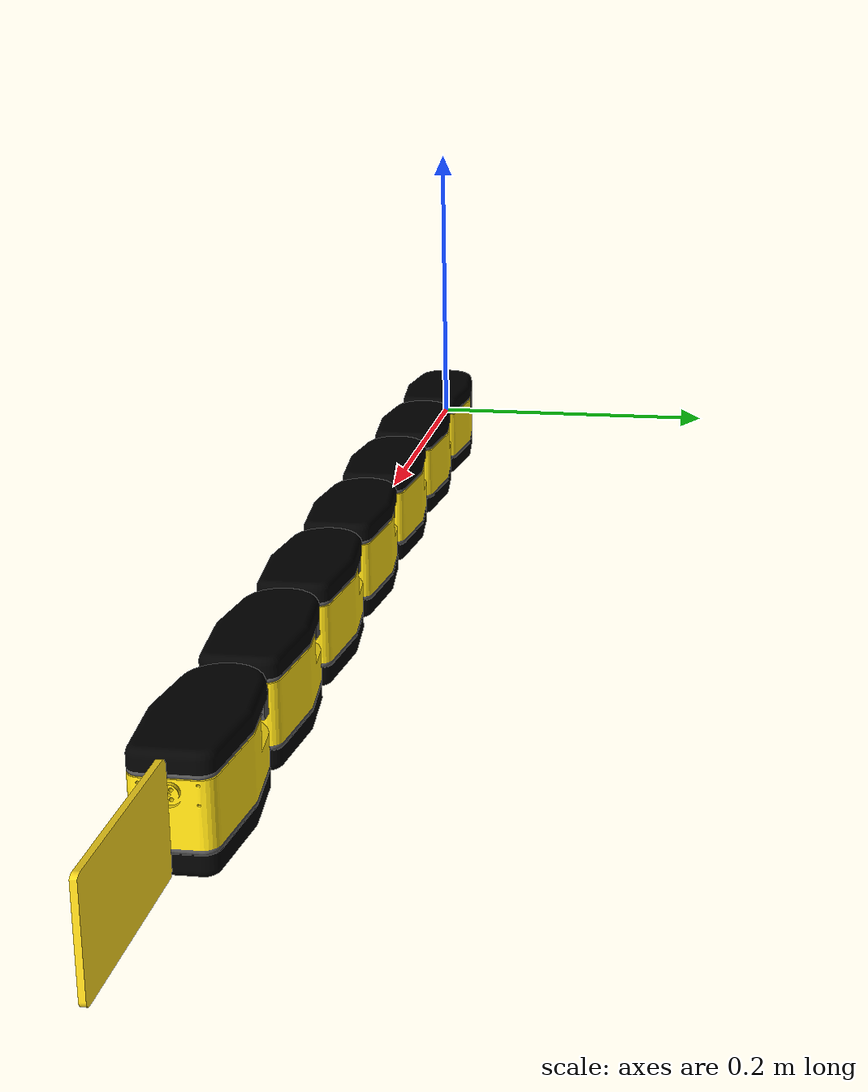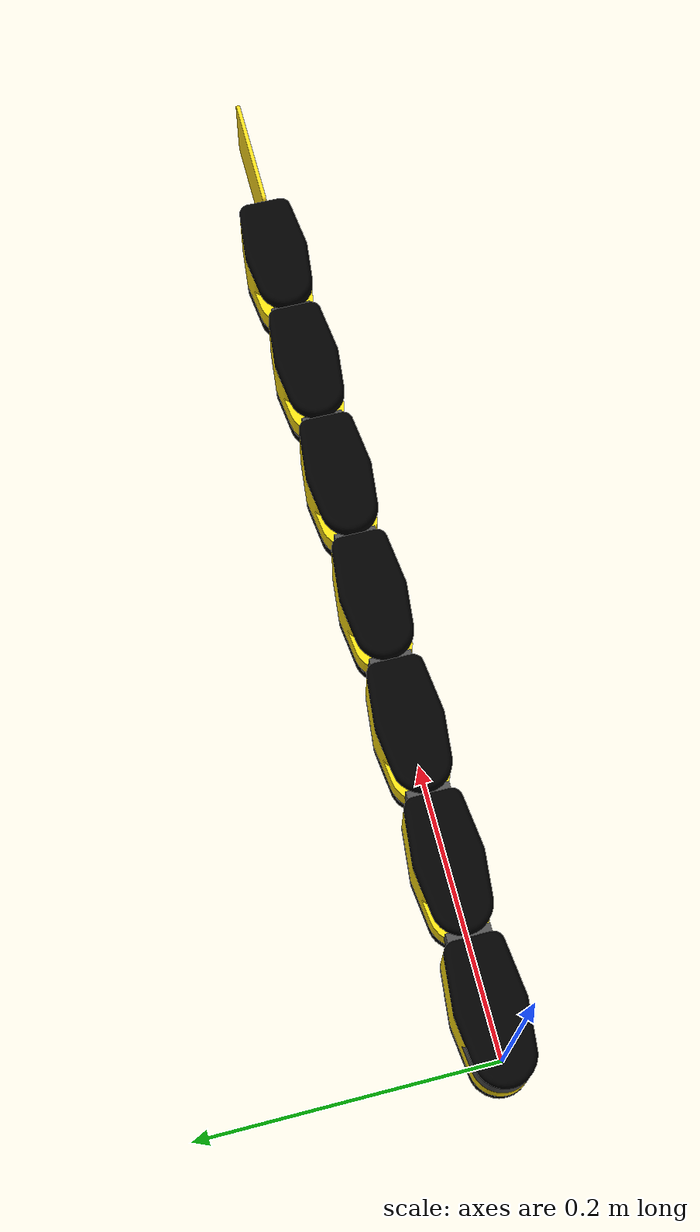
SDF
<?xml version="1.0" ?>
<sdf version="1.6">
  <model name="amphibot">
    <static>false</static>
    <pose>0.0 0.0 0.0 0.0 0.0 0.0</pose>
    <link name="body_module_0">
      <pose>0.0 0.0 0.0 0.0 0.0 0.0</pose>
      <inertial>
        <pose>0.03008411388535613 3.215854099859687e-05 -4.869448966906756e-05 0.0 0.0 0.0</pose>
        <mass>0.214</mass>
        <inertia>
          <ixx>9.12681710047744e-05</ixx>
          <ixy>1.848417294317872e-09</ixy>
          <ixz>1.1074904592586922e-08</ixz>
          <iyy>0.00019972990177748257</iyy>
          <iyz>-3.938113086864309e-09</iyz>
          <izz>0.00017273416551466823</izz>
        </inertia>
      </inertial>
      <collision name="body_module_0_collision">
        <pose>0.0975 0.0 0.0 0.0 0.0 0.0</pose>
        <geometry>
          <mesh>
            <uri>model://amphibot/meshes/amphibot_module.dae</uri>
            <scale>1.0 1.0 1.0</scale>
          </mesh>
        </geometry>
      </collision>
      <visual name="body_module_0_visual">
        <pose>0.0975 0.0 0.0 0.0 0.0 0.0</pose>
        <geometry>
          <mesh>
            <uri>model://amphibot/meshes/amphibot_module.dae</uri>
            <scale>1.0 1.0 1.0</scale>
          </mesh>
        </geometry>
        <material/>
      </visual>
    </link>
    <link name="body_module_1">
      <pose>0.0975 0.0 0.0 0.0 0.0 0.0</pose>
      <inertial>
        <pose>0.03008411388535613 3.215854099859687e-05 -4.869448966906756e-05 0.0 0.0 0.0</pose>
        <mass>0.214</mass>
        <inertia>
          <ixx>9.12681710047744e-05</ixx>
          <ixy>1.848417294317872e-09</ixy>
          <ixz>1.1074904592586922e-08</ixz>
          <iyy>0.00019972990177748257</iyy>
          <iyz>-3.938113086864309e-09</iyz>
          <izz>0.00017273416551466823</izz>
        </inertia>
      </inertial>
      <collision name="body_module_1_collision">
        <pose>0.0975 0.0 0.0 0.0 0.0 0.0</pose>
        <geometry>
          <mesh>
            <uri>model://amphibot/meshes/amphibot_module.dae</uri>
            <scale>1.0 1.0 1.0</scale>
          </mesh>
        </geometry>
      </collision>
      <visual name="body_module_1_visual">
        <pose>0.0975 0.0 0.0 0.0 0.0 0.0</pose>
        <geometry>
          <mesh>
            <uri>model://amphibot/meshes/amphibot_module.dae</uri>
            <scale>1.0 1.0 1.0</scale>
          </mesh>
        </geometry>
        <material/>
      </visual>
    </link>
    <link name="body_module_2">
      <pose>0.195 0.0 0.0 0.0 0.0 0.0</pose>
      <inertial>
        <pose>0.03008411388535613 3.215854099859687e-05 -4.869448966906756e-05 0.0 0.0 0.0</pose>
        <mass>0.214</mass>
        <inertia>
          <ixx>9.12681710047744e-05</ixx>
          <ixy>1.848417294317872e-09</ixy>
          <ixz>1.1074904592586922e-08</ixz>
          <iyy>0.00019972990177748257</iyy>
          <iyz>-3.938113086864309e-09</iyz>
          <izz>0.00017273416551466823</izz>
        </inertia>
      </inertial>
      <collision name="body_module_2_collision">
        <pose>0.0975 0.0 0.0 0.0 0.0 0.0</pose>
        <geometry>
          <mesh>
            <uri>model://amphibot/meshes/amphibot_module.dae</uri>
            <scale>1.0 1.0 1.0</scale>
          </mesh>
        </geometry>
      </collision>
      <visual name="body_module_2_visual">
        <pose>0.0975 0.0 0.0 0.0 0.0 0.0</pose>
        <geometry>
          <mesh>
            <uri>model://amphibot/meshes/amphibot_module.dae</uri>
            <scale>1.0 1.0 1.0</scale>
          </mesh>
        </geometry>
        <material/>
      </visual>
    </link>
    <link name="body_module_3">
      <pose>0.2925 0.0 0.0 0.0 0.0 0.0</pose>
      <inertial>
        <pose>0.03008411388535613 3.215854099859687e-05 -4.869448966906756e-05 0.0 0.0 0.0</pose>
        <mass>0.214</mass>
        <inertia>
          <ixx>9.12681710047744e-05</ixx>
          <ixy>1.848417294317872e-09</ixy>
          <ixz>1.1074904592586922e-08</ixz>
          <iyy>0.00019972990177748257</iyy>
          <iyz>-3.938113086864309e-09</iyz>
          <izz>0.00017273416551466823</izz>
        </inertia>
      </inertial>
      <collision name="body_module_3_collision">
        <pose>0.0975 0.0 0.0 0.0 0.0 0.0</pose>
        <geometry>
          <mesh>
            <uri>model://amphibot/meshes/amphibot_module.dae</uri>
            <scale>1.0 1.0 1.0</scale>
          </mesh>
        </geometry>
      </collision>
      <visual name="body_module_3_visual">
        <pose>0.0975 0.0 0.0 0.0 0.0 0.0</pose>
        <geometry>
          <mesh>
            <uri>model://amphibot/meshes/amphibot_module.dae</uri>
            <scale>1.0 1.0 1.0</scale>
          </mesh>
        </geometry>
        <material/>
      </visual>
    </link>
    <link name="body_module_4">
      <pose>0.39 0.0 0.0 0.0 0.0 0.0</pose>
      <inertial>
        <pose>0.03008411388535613 3.215854099859687e-05 -4.869448966906756e-05 0.0 0.0 0.0</pose>
        <mass>0.214</mass>
        <inertia>
          <ixx>9.12681710047744e-05</ixx>
          <ixy>1.848417294317872e-09</ixy>
          <ixz>1.1074904592586922e-08</ixz>
          <iyy>0.00019972990177748257</iyy>
          <iyz>-3.938113086864309e-09</iyz>
          <izz>0.00017273416551466823</izz>
        </inertia>
      </inertial>
      <collision name="body_module_4_collision">
        <pose>0.0975 0.0 0.0 0.0 0.0 0.0</pose>
        <geometry>
          <mesh>
            <uri>model://amphibot/meshes/amphibot_module.dae</uri>
            <scale>1.0 1.0 1.0</scale>
          </mesh>
        </geometry>
      </collision>
      <visual name="body_module_4_visual">
        <pose>0.0975 0.0 0.0 0.0 0.0 0.0</pose>
        <geometry>
          <mesh>
            <uri>model://amphibot/meshes/amphibot_module.dae</uri>
            <scale>1.0 1.0 1.0</scale>
          </mesh>
        </geometry>
        <material/>
      </visual>
    </link>
    <link name="body_module_5">
      <pose>0.48750000000000004 0.0 0.0 0.0 0.0 0.0</pose>
      <inertial>
        <pose>0.03008411388535613 3.215854099859687e-05 -4.869448966906756e-05 0.0 0.0 0.0</pose>
        <mass>0.214</mass>
        <inertia>
          <ixx>9.12681710047744e-05</ixx>
          <ixy>1.848417294317872e-09</ixy>
          <ixz>1.1074904592586922e-08</ixz>
          <iyy>0.00019972990177748257</iyy>
          <iyz>-3.938113086864309e-09</iyz>
          <izz>0.00017273416551466823</izz>
        </inertia>
      </inertial>
      <collision name="body_module_5_collision">
        <pose>0.0975 0.0 0.0 0.0 0.0 0.0</pose>
        <geometry>
          <mesh>
            <uri>model://amphibot/meshes/amphibot_module.dae</uri>
            <scale>1.0 1.0 1.0</scale>
          </mesh>
        </geometry>
      </collision>
      <visual name="body_module_5_visual">
        <pose>0.0975 0.0 0.0 0.0 0.0 0.0</pose>
        <geometry>
          <mesh>
            <uri>model://amphibot/meshes/amphibot_module.dae</uri>
            <scale>1.0 1.0 1.0</scale>
          </mesh>
        </geometry>
        <material/>
      </visual>
    </link>
    <link name="body_module_6">
      <pose>0.585 0.0 0.0 0.0 0.0 0.0</pose>
      <inertial>
        <pose>0.03008411388535613 3.215854099859687e-05 -4.869448966906756e-05 0.0 0.0 0.0</pose>
        <mass>0.214</mass>
        <inertia>
          <ixx>9.12681710047744e-05</ixx>
          <ixy>1.848417294317872e-09</ixy>
          <ixz>1.1074904592586922e-08</ixz>
          <iyy>0.00019972990177748257</iyy>
          <iyz>-3.938113086864309e-09</iyz>
          <izz>0.00017273416551466823</izz>
        </inertia>
      </inertial>
      <collision name="body_module_6_collision">
        <pose>0.0975 0.0 0.0 0.0 0.0 0.0</pose>
        <geometry>
          <mesh>
            <uri>model://amphibot/meshes/amphibot_module.dae</uri>
            <scale>1.0 1.0 1.0</scale>
          </mesh>
        </geometry>
      </collision>
      <visual name="body_module_6_visual">
        <pose>0.0975 0.0 0.0 0.0 0.0 0.0</pose>
        <geometry>
          <mesh>
            <uri>model://amphibot/meshes/amphibot_module.dae</uri>
            <scale>1.0 1.0 1.0</scale>
          </mesh>
        </geometry>
        <material/>
      </visual>
    </link>
    <link name="body_connector_0">
      <pose>0.0 0.0 0.0 0.0 0.0 0.0</pose>
      <inertial>
        <pose>0.0870838011914423 9.854652666755277e-06 0.009335993975232255 0.0 0.0 0.0</pose>
        <mass>0.01</mass>
        <inertia>
          <ixx>7.144793357561162e-07</ixx>
          <ixy>-3.5627770246883753e-11</ixy>
          <ixz>3.675871019561933e-08</ixz>
          <iyy>7.820375284625299e-07</iyy>
          <iyz>-1.8301435317497848e-11</iyz>
          <izz>1.0666696127239847e-06</izz>
        </inertia>
      </inertial>
      <collision name="body_connector_0_collision">
        <pose>0.0975 0.0 0.0 0.0 0.0 0.0</pose>
        <geometry>
          <mesh>
            <uri>model://amphibot/meshes/amphibot_connector.dae</uri>
            <scale>1.0 1.0 1.0</scale>
          </mesh>
        </geometry>
      </collision>
      <visual name="body_connector_0_visual">
        <pose>0.0975 0.0 0.0 0.0 0.0 0.0</pose>
        <geometry>
          <mesh>
            <uri>model://amphibot/meshes/amphibot_connector.dae</uri>
            <scale>1.0 1.0 1.0</scale>
          </mesh>
        </geometry>
        <material/>
      </visual>
    </link>
    <link name="body_connector_1">
      <pose>0.0975 0.0 0.0 0.0 0.0 0.0</pose>
      <inertial>
        <pose>0.0870838011914423 9.854652666755277e-06 0.009335993975232255 0.0 0.0 0.0</pose>
        <mass>0.01</mass>
        <inertia>
          <ixx>7.144793357561162e-07</ixx>
          <ixy>-3.5627770246883753e-11</ixy>
          <ixz>3.675871019561933e-08</ixz>
          <iyy>7.820375284625299e-07</iyy>
          <iyz>-1.8301435317497848e-11</iyz>
          <izz>1.0666696127239847e-06</izz>
        </inertia>
      </inertial>
      <collision name="body_connector_1_collision">
        <pose>0.0975 0.0 0.0 0.0 0.0 0.0</pose>
        <geometry>
          <mesh>
            <uri>model://amphibot/meshes/amphibot_connector.dae</uri>
            <scale>1.0 1.0 1.0</scale>
          </mesh>
        </geometry>
      </collision>
      <visual name="body_connector_1_visual">
        <pose>0.0975 0.0 0.0 0.0 0.0 0.0</pose>
        <geometry>
          <mesh>
            <uri>model://amphibot/meshes/amphibot_connector.dae</uri>
            <scale>1.0 1.0 1.0</scale>
          </mesh>
        </geometry>
        <material/>
      </visual>
    </link>
    <link name="body_connector_2">
      <pose>0.195 0.0 0.0 0.0 0.0 0.0</pose>
      <inertial>
        <pose>0.0870838011914423 9.854652666755277e-06 0.009335993975232255 0.0 0.0 0.0</pose>
        <mass>0.01</mass>
        <inertia>
          <ixx>7.144793357561162e-07</ixx>
          <ixy>-3.5627770246883753e-11</ixy>
          <ixz>3.675871019561933e-08</ixz>
          <iyy>7.820375284625299e-07</iyy>
          <iyz>-1.8301435317497848e-11</iyz>
          <izz>1.0666696127239847e-06</izz>
        </inertia>
      </inertial>
      <collision name="body_connector_2_collision">
        <pose>0.0975 0.0 0.0 0.0 0.0 0.0</pose>
        <geometry>
          <mesh>
            <uri>model://amphibot/meshes/amphibot_connector.dae</uri>
            <scale>1.0 1.0 1.0</scale>
          </mesh>
        </geometry>
      </collision>
      <visual name="body_connector_2_visual">
        <pose>0.0975 0.0 0.0 0.0 0.0 0.0</pose>
        <geometry>
          <mesh>
            <uri>model://amphibot/meshes/amphibot_connector.dae</uri>
            <scale>1.0 1.0 1.0</scale>
          </mesh>
        </geometry>
        <material/>
      </visual>
    </link>
    <link name="body_connector_3">
      <pose>0.2925 0.0 0.0 0.0 0.0 0.0</pose>
      <inertial>
        <pose>0.0870838011914423 9.854652666755277e-06 0.009335993975232255 0.0 0.0 0.0</pose>
        <mass>0.01</mass>
        <inertia>
          <ixx>7.144793357561162e-07</ixx>
          <ixy>-3.5627770246883753e-11</ixy>
          <ixz>3.675871019561933e-08</ixz>
          <iyy>7.820375284625299e-07</iyy>
          <iyz>-1.8301435317497848e-11</iyz>
          <izz>1.0666696127239847e-06</izz>
        </inertia>
      </inertial>
      <collision name="body_connector_3_collision">
        <pose>0.0975 0.0 0.0 0.0 0.0 0.0</pose>
        <geometry>
          <mesh>
            <uri>model://amphibot/meshes/amphibot_connector.dae</uri>
            <scale>1.0 1.0 1.0</scale>
          </mesh>
        </geometry>
      </collision>
      <visual name="body_connector_3_visual">
        <pose>0.0975 0.0 0.0 0.0 0.0 0.0</pose>
        <geometry>
          <mesh>
            <uri>model://amphibot/meshes/amphibot_connector.dae</uri>
            <scale>1.0 1.0 1.0</scale>
          </mesh>
        </geometry>
        <material/>
      </visual>
    </link>
    <link name="body_connector_4">
      <pose>0.39 0.0 0.0 0.0 0.0 0.0</pose>
      <inertial>
        <pose>0.0870838011914423 9.854652666755277e-06 0.009335993975232255 0.0 0.0 0.0</pose>
        <mass>0.01</mass>
        <inertia>
          <ixx>7.144793357561162e-07</ixx>
          <ixy>-3.5627770246883753e-11</ixy>
          <ixz>3.675871019561933e-08</ixz>
          <iyy>7.820375284625299e-07</iyy>
          <iyz>-1.8301435317497848e-11</iyz>
          <izz>1.0666696127239847e-06</izz>
        </inertia>
      </inertial>
      <collision name="body_connector_4_collision">
        <pose>0.0975 0.0 0.0 0.0 0.0 0.0</pose>
        <geometry>
          <mesh>
            <uri>model://amphibot/meshes/amphibot_connector.dae</uri>
            <scale>1.0 1.0 1.0</scale>
          </mesh>
        </geometry>
      </collision>
      <visual name="body_connector_4_visual">
        <pose>0.0975 0.0 0.0 0.0 0.0 0.0</pose>
        <geometry>
          <mesh>
            <uri>model://amphibot/meshes/amphibot_connector.dae</uri>
            <scale>1.0 1.0 1.0</scale>
          </mesh>
        </geometry>
        <material/>
      </visual>
    </link>
    <link name="body_connector_5">
      <pose>0.48750000000000004 0.0 0.0 0.0 0.0 0.0</pose>
      <inertial>
        <pose>0.0870838011914423 9.854652666755277e-06 0.009335993975232255 0.0 0.0 0.0</pose>
        <mass>0.01</mass>
        <inertia>
          <ixx>7.144793357561162e-07</ixx>
          <ixy>-3.5627770246883753e-11</ixy>
          <ixz>3.675871019561933e-08</ixz>
          <iyy>7.820375284625299e-07</iyy>
          <iyz>-1.8301435317497848e-11</iyz>
          <izz>1.0666696127239847e-06</izz>
        </inertia>
      </inertial>
      <collision name="body_connector_5_collision">
        <pose>0.0975 0.0 0.0 0.0 0.0 0.0</pose>
        <geometry>
          <mesh>
            <uri>model://amphibot/meshes/amphibot_connector.dae</uri>
            <scale>1.0 1.0 1.0</scale>
          </mesh>
        </geometry>
      </collision>
      <visual name="body_connector_5_visual">
        <pose>0.0975 0.0 0.0 0.0 0.0 0.0</pose>
        <geometry>
          <mesh>
            <uri>model://amphibot/meshes/amphibot_connector.dae</uri>
            <scale>1.0 1.0 1.0</scale>
          </mesh>
        </geometry>
        <material/>
      </visual>
    </link>
    <link name="tail">
      <pose>0.6825 0.0 0.0 0.0 0.0 0.0</pose>
      <inertial>
        <pose>0.027042109434386934 -0.001865254984879075 -0.00032043625271577605 0.0 0.0 0.0</pose>
        <mass>0.018</mass>
        <inertia>
          <ixx>5.026385123630433e-06</ixx>
          <ixy>1.778138135126363e-07</ixy>
          <ixz>2.601906696340963e-07</ixz>
          <iyy>1.8432748243088785e-05</iyy>
          <iyz>-9.177519623265663e-09</iyz>
          <izz>1.341540669110615e-05</izz>
        </inertia>
      </inertial>
      <collision name="tail_collision">
        <pose>0.0 0.0 0.0 0.0 0.0 0.0</pose>
        <geometry>
          <mesh>
            <uri>model://amphibot/meshes/amphibot_tail.dae</uri>
            <scale>1.0 1.0 1.0</scale>
          </mesh>
        </geometry>
      </collision>
      <visual name="tail_visual">
        <pose>0.0 0.0 0.0 0.0 0.0 0.0</pose>
        <geometry>
          <mesh>
            <uri>model://amphibot/meshes/amphibot_tail.dae</uri>
            <scale>1.0 1.0 1.0</scale>
          </mesh>
        </geometry>
        <material/>
      </visual>
    </link>
    <link name="eyes">
      <pose>0.0975 0.0 0.0 0.0 0.0 0.0</pose>
      <inertial>
        <pose>-0.09731520740143583 3.323096332725175e-05 0.009787513378397868 0.0 0.0 0.0</pose>
        <mass>0.01</mass>
        <inertia>
          <ixx>1.528677884321247e-06</ixx>
          <ixy>1.6502736236339367e-10</ixy>
          <ixz>-2.9481793462596264e-09</ixz>
          <iyy>1.1615283632216405e-06</iyy>
          <iyz>-6.537034580072569e-11</iyz>
          <izz>2.136549089153614e-06</izz>
        </inertia>
      </inertial>
      <collision name="eyes_collision">
        <pose>0.0 0.0 0.0 0.0 0.0 0.0</pose>
        <geometry>
          <mesh>
            <uri>model://amphibot/meshes/amphibot_eyes.dae</uri>
            <scale>1.0 1.0 1.0</scale>
          </mesh>
        </geometry>
      </collision>
      <visual name="eyes_visual">
        <pose>0.0 0.0 0.0 0.0 0.0 0.0</pose>
        <geometry>
          <mesh>
            <uri>model://amphibot/meshes/amphibot_eyes.dae</uri>
            <scale>1.0 1.0 1.0</scale>
          </mesh>
        </geometry>
        <material/>
      </visual>
    </link>
    <joint name="joint_m2c_0" type="fixed">
      <parent>body_module_0</parent>
      <child>body_connector_0</child>
      <pose>0.0 0.0 0.0 0.0 0.0 0.0</pose>
    </joint>
    <joint name="joint_m2c_1" type="fixed">
      <parent>body_module_1</parent>
      <child>body_connector_1</child>
      <pose>0.0 0.0 0.0 0.0 0.0 0.0</pose>
    </joint>
    <joint name="joint_m2c_2" type="fixed">
      <parent>body_module_2</parent>
      <child>body_connector_2</child>
      <pose>0.0 0.0 0.0 0.0 0.0 0.0</pose>
    </joint>
    <joint name="joint_m2c_3" type="fixed">
      <parent>body_module_3</parent>
      <child>body_connector_3</child>
      <pose>0.0 0.0 0.0 0.0 0.0 0.0</pose>
    </joint>
    <joint name="joint_m2c_4" type="fixed">
      <parent>body_module_4</parent>
      <child>body_connector_4</child>
      <pose>0.0 0.0 0.0 0.0 0.0 0.0</pose>
    </joint>
    <joint name="joint_m2c_5" type="fixed">
      <parent>body_module_5</parent>
      <child>body_connector_5</child>
      <pose>0.0 0.0 0.0 0.0 0.0 0.0</pose>
    </joint>
    <joint name="joint_c2m_0" type="revolute">
      <parent>body_connector_0</parent>
      <child>body_module_1</child>
      <pose>0.0 0.0 0.0 0.0 0.0 0.0</pose>
      <axis>
        <xyz>0 0 1</xyz>
        <limit>
          <lower>-3.141592653589793</lower>
          <upper>3.141592653589793</upper>
          <effort>10000000000.0</effort>
          <velocity>628.3185307179587</velocity>
        </limit>
      </axis>
    </joint>
    <joint name="joint_c2m_1" type="revolute">
      <parent>body_connector_1</parent>
      <child>body_module_2</child>
      <pose>0.0 0.0 0.0 0.0 0.0 0.0</pose>
      <axis>
        <xyz>0 0 1</xyz>
        <limit>
          <lower>-3.141592653589793</lower>
          <upper>3.141592653589793</upper>
          <effort>10000000000.0</effort>
          <velocity>628.3185307179587</velocity>
        </limit>
      </axis>
    </joint>
    <joint name="joint_c2m_2" type="revolute">
      <parent>body_connector_2</parent>
      <child>body_module_3</child>
      <pose>0.0 0.0 0.0 0.0 0.0 0.0</pose>
      <axis>
        <xyz>0 0 1</xyz>
        <limit>
          <lower>-3.141592653589793</lower>
          <upper>3.141592653589793</upper>
          <effort>10000000000.0</effort>
          <velocity>628.3185307179587</velocity>
        </limit>
      </axis>
    </joint>
    <joint name="joint_c2m_3" type="revolute">
      <parent>body_connector_3</parent>
      <child>body_module_4</child>
      <pose>0.0 0.0 0.0 0.0 0.0 0.0</pose>
      <axis>
        <xyz>0 0 1</xyz>
        <limit>
          <lower>-3.141592653589793</lower>
          <upper>3.141592653589793</upper>
          <effort>10000000000.0</effort>
          <velocity>628.3185307179587</velocity>
        </limit>
      </axis>
    </joint>
    <joint name="joint_c2m_4" type="revolute">
      <parent>body_connector_4</parent>
      <child>body_module_5</child>
      <pose>0.0 0.0 0.0 0.0 0.0 0.0</pose>
      <axis>
        <xyz>0 0 1</xyz>
        <limit>
          <lower>-3.141592653589793</lower>
          <upper>3.141592653589793</upper>
          <effort>10000000000.0</effort>
          <velocity>628.3185307179587</velocity>
        </limit>
      </axis>
    </joint>
    <joint name="joint_c2m_5" type="revolute">
      <parent>body_connector_5</parent>
      <child>body_module_6</child>
      <pose>0.0 0.0 0.0 0.0 0.0 0.0</pose>
      <axis>
        <xyz>0 0 1</xyz>
        <limit>
          <lower>-3.141592653589793</lower>
          <upper>3.141592653589793</upper>
          <effort>10000000000.0</effort>
          <velocity>628.3185307179587</velocity>
        </limit>
      </axis>
    </joint>
    <joint name="joint_tail" type="fixed">
      <parent>body_module_6</parent>
      <child>tail</child>
      <pose>0.0 0.0 0.0 0.0 0.0 0.0</pose>
    </joint>
    <joint name="joint_eyes" type="fixed">
      <parent>body_module_0</parent>
      <child>eyes</child>
      <pose>0.0 0.0 0.0 0.0 0.0 0.0</pose>
    </joint>
    <plugin name="FluidPlugin" filename="libFluidSimulator.so">
      <fluidConfiguration>
        <timeStepSize>0.001</timeStepSize>
        <simulationMethod>4</simulationMethod>
        <particleRadius>0.025</particleRadius>
        <gravitation>0 0 -9.81</gravitation>
        <cflMethod>0</cflMethod>
        <cflFactor>0.45</cflFactor>
        <cflMaxTimeStepSize>0.01</cflMaxTimeStepSize>
        <maxIterations>100</maxIterations>
        <maxError>0.05</maxError>
        <maxIterationsV>100</maxIterationsV>
        <maxErrorV>0.1</maxErrorV>
        <stiffness>50000</stiffness>
        <exponent>7</exponent>
        <enableDivergenceSolver>true</enableDivergenceSolver>
        <velocityUpdateMethod>0</velocityUpdateMethod>
        <boundaryHandlingMethod>0</boundaryHandlingMethod>
        <enableVTKExport>false</enableVTKExport>
        <enablePartioExport>false</enablePartioExport>
        <enableRigidBodyVTKExport>false</enableRigidBodyVTKExport>
      </fluidConfiguration>
      <fluid>
        <viscosity>0.1</viscosity>
        <viscosityMethod>1</viscosityMethod>
      </fluid>
      <fluidBlock>
        <denseMode>0</denseMode>
        <start>-3 -1 0.01</start>
        <end>3 1 0.2</end>
      </fluidBlock>
      <fluidModels>
        <particleFile>../models/particle_grid.bgeo</particleFile>
        <translation>0.0 0.0 0.0 </translation>
        <scale>1.0 1.0 1.0 </scale>
      </fluidModels>
    </plugin>
    <plugin name="joint_controller" filename="libamphibot_joint_controller.so"></plugin>
  </model>
</sdf>
